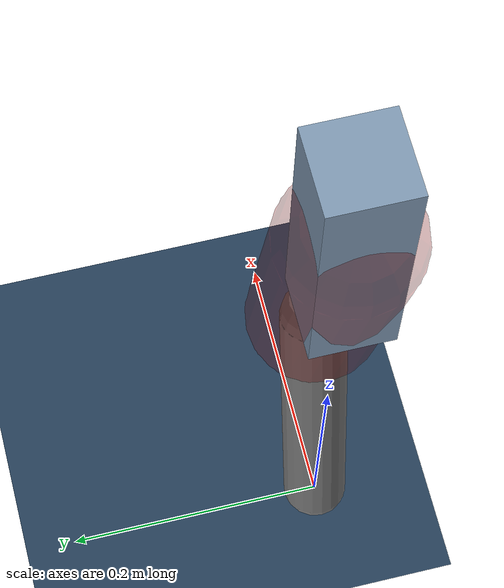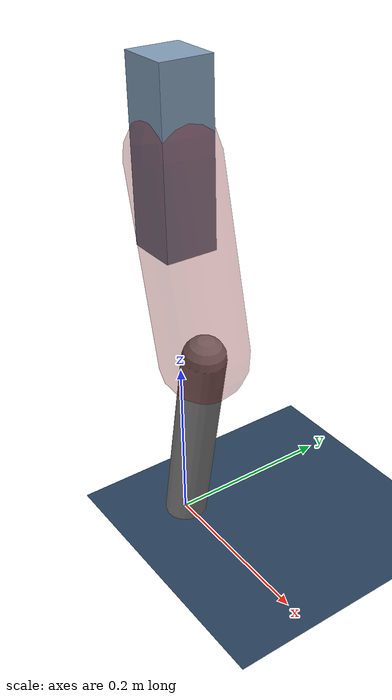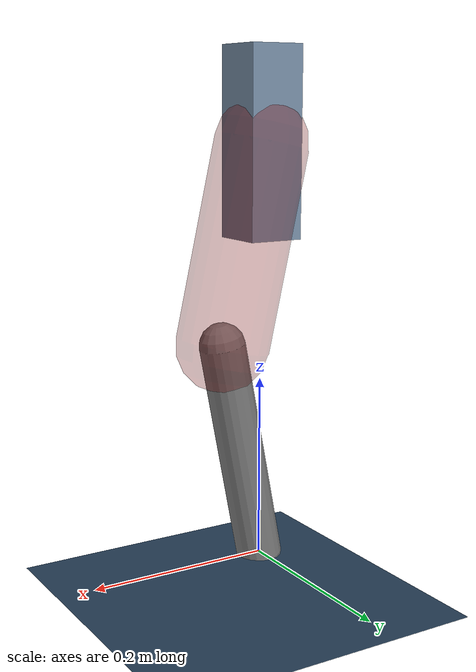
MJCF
<mujoco model="Hopper2D">
	<compiler inertiafromgeom="true" angle="radian" />
	<option timestep="0.001" integrator="implicit" cone="elliptic" solver="Newton" tolerance="1e-10" />

	<default>
		<geom contype="1" conaffinity="1" condim="3" friction="2 0.005 0.0001" solref="0.005 1" />
		<joint limited="true" damping="0.1" />
	</default>

	<asset>
		<texture name="skybox" type="skybox" builtin="gradient" rgb1=".4 .6 .8" rgb2="0 0 0" width="800" height="800" />
		<texture name="grid" type="2d" builtin="checker" rgb1=".1 .2 .3" rgb2=".2 .3 .4" width="300" height="300" mark="edge" markrgb=".2 .3 .4" />
		<material name="ground" texture="grid" texrepeat="1 1" texuniform="true" reflectance="0.1" />
		<material name="leg" rgba="0.5 0.6 0.7 1" />
	</asset>

	<worldbody>

		<geom name="floor" type="plane" size="5 5 0.25" material="ground" />

		<light directional="false" diffuse="0.8 0.8 0.8" specular="0.3 0.3 0.3" pos="0 0 2" dir="0 0 -1" />
		<light mode="targetbodycom" target="base" directional="false" diffuse="0.8 0.8 0.8" specular="0.3 0.3 0.3" pos="0 0 2" dir="0 0 -1" />

		<camera name="fixed" pos="0 -2 1" xyaxes="1 0 0 0 0 1" />
		<camera name="tracking" mode="trackcom" pos="0 -3 1" />

		<body name="root" pos="0 0 0.45282904736466234">
			<joint name="slide_x" type="slide" axis="1 0 0" range="-100 100" />
			<joint name="slide_z" type="slide" axis="0 0 1" range="0 10" />

			<body name="base" pos="0 0 0">
				<geom name="torso" type="box" size="0.03 0.03 0.1" mass="2.257" material="leg" />

				<body name="link1" pos="0 0 0" euler="0 1.3487825250404772 0">
					<joint type="hinge" axis="0 -1 0" pos="0 0 0" name="hinge1" limited="true" range="-3.14 3.14" stiffness="0" damping="0.1" />
					<geom name="thigh" type="capsule" fromto="0 0 0 0.2168342915543811 0 0" size="0.05" rgba="0.5 0 0 0.3" mass="0.7716857288859528" />

					<body name="link2" pos="0.2168342915543811 0 0" euler="0 0.4173459462286009 0">
						<joint type="hinge" axis="0 -1 0" pos="0 0 0" name="hinge2" limited="true" range="-3.14 3.14" stiffness="0" damping="0.1" />
						<geom name="shank" type="capsule" fromto="0 0 0 0.24599475581028124 0 0" size="0.025" mass="0.439195804648225" />

					</body>
				</body>
			</body>
		</body>
	</worldbody>

	<actuator>
		<motor name="torque1" joint="hinge1" ctrlrange="-25.59605978450754 25.59605978450754" ctrllimited="true" gear="1" />
		<motor name="torque2" joint="hinge2" ctrlrange="-86.4659845121012 86.4659845121012" ctrllimited="true" gear="1" />
	</actuator>
</mujoco>
